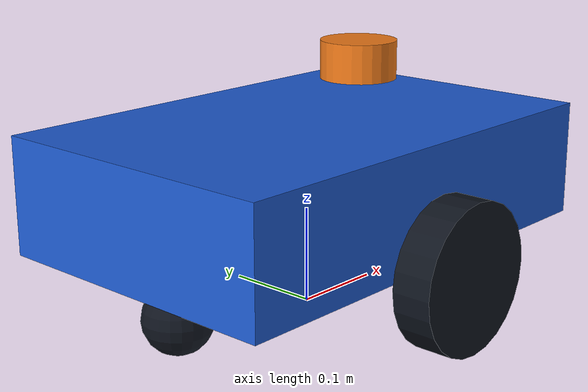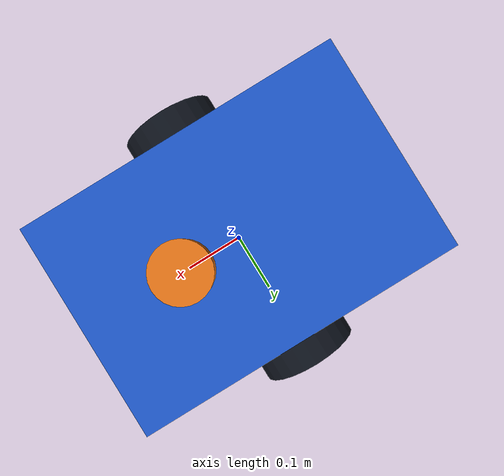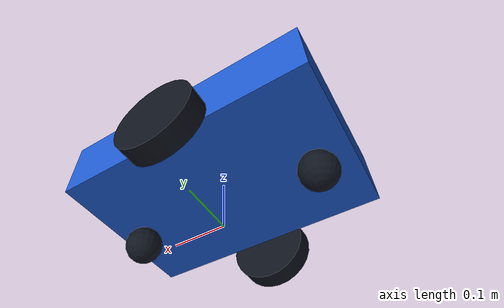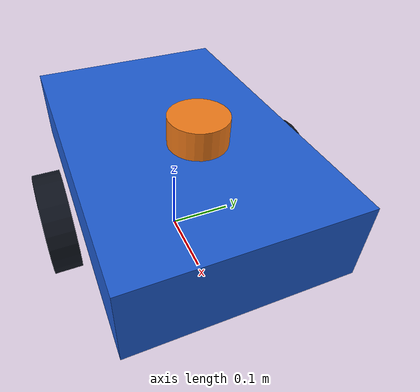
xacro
<?xml version="1.0"?>
<!--
  Copyright 2026 Hasan Ahmed
  SPDX-License-Identifier: Apache-2.0
-->
<robot name="robotest" xmlns:xacro="http://www.ros.org/wiki/xacro">
  <xacro:arg name="namespace" default="/robotest"/>
  <xacro:arg name="use_gazebo" default="true"/>
  <xacro:arg name="enable_ground_truth" default="true"/>

  <xacro:property name="topic_namespace" value="$(arg namespace)"/>

  <xacro:include filename="robotest_properties.xacro"/>
  <xacro:include filename="robotest_inertials.xacro"/>
  <xacro:include filename="robotest_materials.xacro"/>
  <xacro:include filename="robotest_base.xacro"/>
  <xacro:include filename="robotest_sensors.xacro"/>
  <xacro:include filename="robotest_gazebo.xacro"/>

  <xacro:robotest_base/>
  <xacro:robotest_sensors/>

  <xacro:if value="$(arg use_gazebo)">
    <xacro:robotest_gazebo
      topic_namespace="${topic_namespace}"
      enable_ground_truth="$(arg enable_ground_truth)"/>
  </xacro:if>
</robot>

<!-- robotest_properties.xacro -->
<!--
  Copyright 2026 Hasan Ahmed
  SPDX-License-Identifier: Apache-2.0
-->
<robot xmlns:xacro="http://www.ros.org/wiki/xacro">
  <!-- Chassis dimensions and pose, in SI units. -->
  <xacro:property name="base_length" value="0.48"/>
  <xacro:property name="base_width" value="0.32"/>
  <xacro:property name="base_height" value="0.12"/>
  <xacro:property name="base_mass" value="8.0"/>
  <xacro:property name="base_center_z" value="0.135"/>

  <!-- Differential-drive geometry. -->
  <xacro:property name="wheel_radius" value="0.075"/>
  <xacro:property name="wheel_width" value="0.04"/>
  <xacro:property name="wheel_mass" value="0.35"/>
  <xacro:property name="wheel_separation" value="0.38"/>

  <!-- Two low-friction spherical support points keep the chassis level. -->
  <xacro:property name="caster_radius" value="0.035"/>
  <xacro:property name="caster_mass" value="0.08"/>
  <xacro:property name="caster_x" value="0.18"/>

  <!-- Sensor body properties. -->
  <xacro:property name="lidar_radius" value="0.04"/>
  <xacro:property name="lidar_height" value="0.04"/>
  <xacro:property name="lidar_mass" value="0.12"/>
  <xacro:property name="lidar_x" value="0.08"/>
  <xacro:property name="lidar_z" value="0.11"/>

  <xacro:property name="imu_x_size" value="0.04"/>
  <xacro:property name="imu_y_size" value="0.03"/>
  <xacro:property name="imu_z_size" value="0.015"/>
  <xacro:property name="imu_mass" value="0.05"/>
  <xacro:property name="imu_z" value="0.02"/>
</robot>

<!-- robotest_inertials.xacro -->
<!--
  Copyright 2026 Hasan Ahmed
  SPDX-License-Identifier: Apache-2.0
-->
<robot xmlns:xacro="http://www.ros.org/wiki/xacro">
  <xacro:macro name="box_inertial" params="mass x y z">
    <inertial>
      <origin xyz="0 0 0" rpy="0 0 0"/>
      <mass value="${mass}"/>
      <inertia
        ixx="${mass * (y * y + z * z) / 12.0}"
        ixy="0.0"
        ixz="0.0"
        iyy="${mass * (x * x + z * z) / 12.0}"
        iyz="0.0"
        izz="${mass * (x * x + y * y) / 12.0}"/>
    </inertial>
  </xacro:macro>

  <xacro:macro name="z_cylinder_inertial" params="mass radius length">
    <inertial>
      <origin xyz="0 0 0" rpy="0 0 0"/>
      <mass value="${mass}"/>
      <inertia
        ixx="${mass * (3.0 * radius * radius + length * length) / 12.0}"
        ixy="0.0"
        ixz="0.0"
        iyy="${mass * (3.0 * radius * radius + length * length) / 12.0}"
        iyz="0.0"
        izz="${mass * radius * radius / 2.0}"/>
    </inertial>
  </xacro:macro>

  <!-- A wheel cylinder's symmetry axis is the link Y axis. -->
  <xacro:macro name="y_cylinder_inertial" params="mass radius length">
    <inertial>
      <origin xyz="0 0 0" rpy="0 0 0"/>
      <mass value="${mass}"/>
      <inertia
        ixx="${mass * (3.0 * radius * radius + length * length) / 12.0}"
        ixy="0.0"
        ixz="0.0"
        iyy="${mass * radius * radius / 2.0}"
        iyz="0.0"
        izz="${mass * (3.0 * radius * radius + length * length) / 12.0}"/>
    </inertial>
  </xacro:macro>

  <xacro:macro name="sphere_inertial" params="mass radius">
    <inertial>
      <origin xyz="0 0 0" rpy="0 0 0"/>
      <mass value="${mass}"/>
      <inertia
        ixx="${2.0 * mass * radius * radius / 5.0}"
        ixy="0.0"
        ixz="0.0"
        iyy="${2.0 * mass * radius * radius / 5.0}"
        iyz="0.0"
        izz="${2.0 * mass * radius * radius / 5.0}"/>
    </inertial>
  </xacro:macro>
</robot>

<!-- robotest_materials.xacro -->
<!--
  Copyright 2026 Hasan Ahmed
  SPDX-License-Identifier: Apache-2.0
-->
<robot xmlns:xacro="http://www.ros.org/wiki/xacro">
  <material name="robotest_blue">
    <color rgba="0.12 0.36 0.82 1.0"/>
  </material>
  <material name="robotest_dark">
    <color rgba="0.06 0.08 0.12 1.0"/>
  </material>
  <material name="robotest_sensor">
    <color rgba="0.94 0.48 0.10 1.0"/>
  </material>
</robot>

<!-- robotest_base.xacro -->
<!--
  Copyright 2026 Hasan Ahmed
  SPDX-License-Identifier: Apache-2.0
-->
<robot xmlns:xacro="http://www.ros.org/wiki/xacro">
  <xacro:macro name="robotest_wheel" params="side y">
    <link name="${side}_wheel_link">
      <visual>
        <origin xyz="0 0 0" rpy="${pi / 2.0} 0 0"/>
        <geometry>
          <cylinder radius="${wheel_radius}" length="${wheel_width}"/>
        </geometry>
        <material name="robotest_dark"/>
      </visual>
      <collision name="${side}_wheel_collision">
        <origin xyz="0 0 0" rpy="${pi / 2.0} 0 0"/>
        <geometry>
          <cylinder radius="${wheel_radius}" length="${wheel_width}"/>
        </geometry>
      </collision>
      <xacro:y_cylinder_inertial
        mass="${wheel_mass}"
        radius="${wheel_radius}"
        length="${wheel_width}"/>
    </link>

    <joint name="${side}_wheel_joint" type="continuous">
      <origin xyz="0 ${y} ${wheel_radius - base_center_z}" rpy="0 0 0"/>
      <parent link="base_link"/>
      <child link="${side}_wheel_link"/>
      <axis xyz="0 1 0"/>
      <dynamics damping="0.05" friction="0.02"/>
    </joint>
  </xacro:macro>

  <xacro:macro name="robotest_caster" params="position x">
    <link name="${position}_caster_link">
      <visual>
        <geometry>
          <sphere radius="${caster_radius}"/>
        </geometry>
        <material name="robotest_dark"/>
      </visual>
      <collision name="${position}_caster_collision">
        <geometry>
          <sphere radius="${caster_radius}"/>
        </geometry>
      </collision>
      <xacro:sphere_inertial mass="${caster_mass}" radius="${caster_radius}"/>
    </link>

    <joint name="${position}_caster_joint" type="fixed">
      <origin xyz="${x} 0 ${caster_radius - base_center_z}" rpy="0 0 0"/>
      <parent link="base_link"/>
      <child link="${position}_caster_link"/>
    </joint>
  </xacro:macro>

  <xacro:macro name="robotest_base">
    <!-- REP-105 ground-projected navigation frame: intentionally non-physical. -->
    <link name="base_footprint"/>

    <link name="base_link">
      <visual>
        <geometry>
          <box size="${base_length} ${base_width} ${base_height}"/>
        </geometry>
        <material name="robotest_blue"/>
      </visual>
      <collision name="base_link_collision">
        <geometry>
          <box size="${base_length} ${base_width} ${base_height}"/>
        </geometry>
      </collision>
      <xacro:box_inertial
        mass="${base_mass}"
        x="${base_length}"
        y="${base_width}"
        z="${base_height}"/>
    </link>

    <joint name="base_footprint_joint" type="fixed">
      <origin xyz="0 0 ${base_center_z}" rpy="0 0 0"/>
      <parent link="base_footprint"/>
      <child link="base_link"/>
    </joint>

    <xacro:robotest_wheel side="left" y="${wheel_separation / 2.0}"/>
    <xacro:robotest_wheel side="right" y="${-wheel_separation / 2.0}"/>
    <xacro:robotest_caster position="front" x="${caster_x}"/>
    <xacro:robotest_caster position="rear" x="${-caster_x}"/>
  </xacro:macro>
</robot>

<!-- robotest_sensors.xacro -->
<!--
  Copyright 2026 Hasan Ahmed
  SPDX-License-Identifier: Apache-2.0
-->
<robot xmlns:xacro="http://www.ros.org/wiki/xacro">
  <xacro:macro name="robotest_sensors">
    <link name="lidar_link">
      <visual>
        <geometry>
          <cylinder radius="${lidar_radius}" length="${lidar_height}"/>
        </geometry>
        <material name="robotest_sensor"/>
      </visual>
      <collision name="lidar_link_collision">
        <geometry>
          <cylinder radius="${lidar_radius}" length="${lidar_height}"/>
        </geometry>
      </collision>
      <xacro:z_cylinder_inertial
        mass="${lidar_mass}"
        radius="${lidar_radius}"
        length="${lidar_height}"/>
    </link>

    <joint name="lidar_joint" type="fixed">
      <origin xyz="${lidar_x} 0 ${lidar_z}" rpy="0 0 0"/>
      <parent link="base_link"/>
      <child link="lidar_link"/>
    </joint>

    <link name="imu_link">
      <visual>
        <geometry>
          <box size="${imu_x_size} ${imu_y_size} ${imu_z_size}"/>
        </geometry>
        <material name="robotest_sensor"/>
      </visual>
      <collision name="imu_link_collision">
        <geometry>
          <box size="${imu_x_size} ${imu_y_size} ${imu_z_size}"/>
        </geometry>
      </collision>
      <xacro:box_inertial
        mass="${imu_mass}"
        x="${imu_x_size}"
        y="${imu_y_size}"
        z="${imu_z_size}"/>
    </link>

    <joint name="imu_joint" type="fixed">
      <origin xyz="0 0 ${imu_z}" rpy="0 0 0"/>
      <parent link="base_link"/>
      <child link="imu_link"/>
    </joint>
  </xacro:macro>
</robot>
